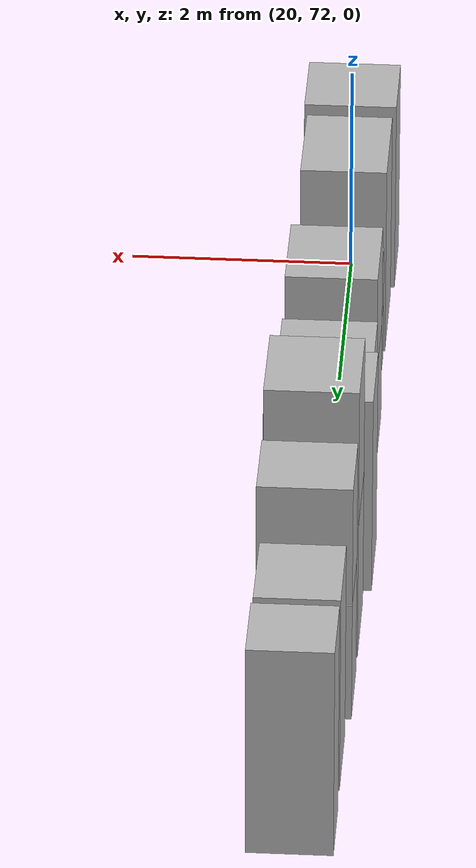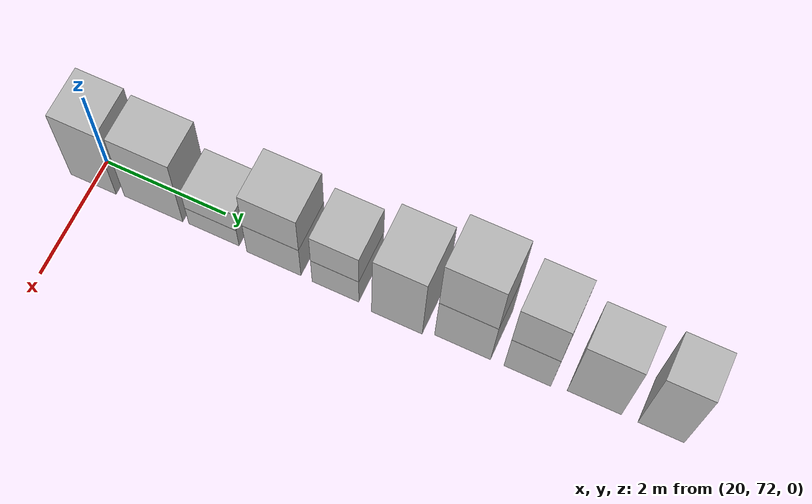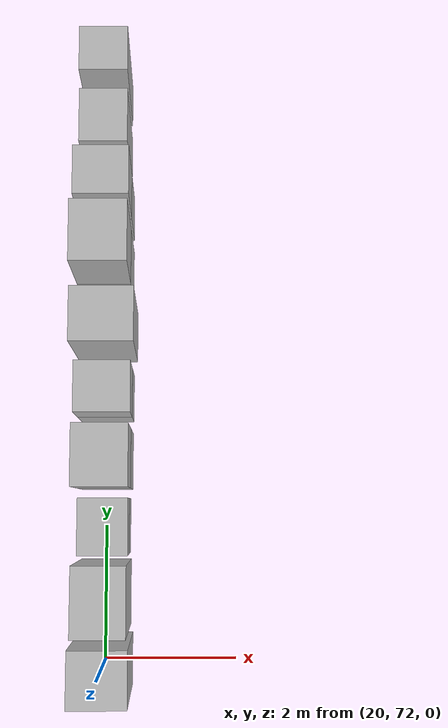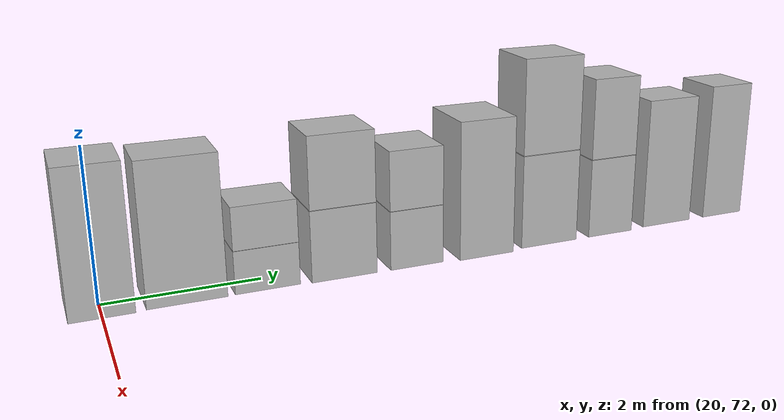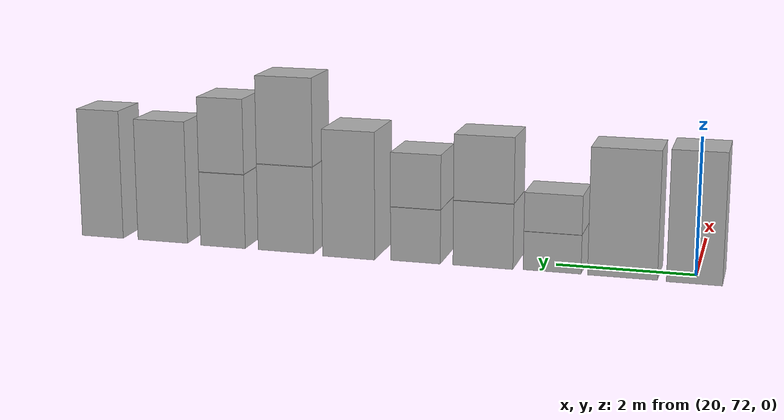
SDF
<sdf version="1.5">
 <world name="default">
  <model name="ground_plane">
   <static>true</static>
   <link name="link">
    <collision name="collision">
     <geometry><plane><normal>0 0 1</normal><size>250 250</size></plane></geometry>
     <surface><friction><ode><mu>1</mu><mu2>1</mu2></ode></friction></surface>
    </collision>
    <visual name="grass">
     <cast_shadows>false</cast_shadows>
     <geometry><mesh><uri>file://grass_plane/meshes/grass_plane.dae</uri></mesh></geometry>
    </visual>
   </link>
  </model>
  <model name="Cardboard_box_622">
   <link name="link_0">
    <pose>20 72 0 0 0 0</pose>
    <inertial>
     <mass>1</mass>
     <inertia>
      <ixx>0.166667</ixx>
      <ixy>0</ixy>
      <ixz>0</ixz>
      <iyy>0.166667</iyy>
      <iyz>0</iyz>
      <izz>0.166667</izz>
     </inertia>
    </inertial>
    <collision name="collision">
     <geometry>
      <mesh>
       <uri>model://Cardboard_box/meshes/cardboard_box.dae</uri>
       <scale>2.07950483462 1.93775980227 4.75104418788</scale>
      </mesh>
     </geometry>
    </collision>
    <visual name="visual">
     <geometry>
      <mesh>
       <uri>model://Cardboard_box/meshes/cardboard_box.dae</uri>
       <scale>2.07950483462 1.93775980227 4.75104418788</scale>
      </mesh>
     </geometry>
    </visual>
   </link>
   <static>1</static>
  </model>
  <model name="Cardboard_box_623">
   <link name="link_0">
    <pose>20 73 0 0 0 0</pose>
    <inertial>
     <mass>1</mass>
     <inertia>
      <ixx>0.166667</ixx>
      <ixy>0</ixy>
      <ixz>0</ixz>
      <iyy>0.166667</iyy>
      <iyz>0</iyz>
      <izz>0.166667</izz>
     </inertia>
    </inertial>
    <collision name="collision">
     <geometry>
      <mesh>
       <uri>model://Cardboard_box/meshes/cardboard_box.dae</uri>
       <scale>1.93011278462 2.46913856433 4.66632540886</scale>
      </mesh>
     </geometry>
    </collision>
    <visual name="visual">
     <geometry>
      <mesh>
       <uri>model://Cardboard_box/meshes/cardboard_box.dae</uri>
       <scale>1.93011278462 2.46913856433 4.66632540886</scale>
      </mesh>
     </geometry>
    </visual>
   </link>
   <static>1</static>
  </model>
  <model name="Cardboard_box_624">
   <link name="link_0">
    <pose>20 74 0 0 0 0</pose>
    <inertial>
     <mass>1</mass>
     <inertia>
      <ixx>0.166667</ixx>
      <ixy>0</ixy>
      <ixz>0</ixz>
      <iyy>0.166667</iyy>
      <iyz>0</iyz>
      <izz>0.166667</izz>
     </inertia>
    </inertial>
    <collision name="collision">
     <geometry>
      <mesh>
       <uri>model://Cardboard_box/meshes/cardboard_box.dae</uri>
       <scale>1.86585459108 2.09443496727 1.43057838274</scale>
      </mesh>
     </geometry>
    </collision>
    <visual name="visual">
     <geometry>
      <mesh>
       <uri>model://Cardboard_box/meshes/cardboard_box.dae</uri>
       <scale>1.86585459108 2.09443496727 1.43057838274</scale>
      </mesh>
     </geometry>
    </visual>
   </link>
   <static>1</static>
  </model>
  <model name="Cardboard_box_top_624">
   <link name="link_0">
    <pose>20 74 0.572231353094 0 0 0</pose>
    <inertial>
     <mass>1</mass>
     <inertia>
      <ixx>0.166667</ixx>
      <ixy>0</ixy>
      <ixz>0</ixz>
      <iyy>0.166667</iyy>
      <iyz>0</iyz>
      <izz>0.166667</izz>
     </inertia>
    </inertial>
    <collision name="collision">
     <geometry>
      <mesh>
       <uri>model://Cardboard_box/meshes/cardboard_box.dae</uri>
       <scale>1.86585459108 2.09443496727 1.43057838274</scale>
      </mesh>
     </geometry>
    </collision>
    <visual name="visual">
     <geometry>
      <mesh>
       <uri>model://Cardboard_box/meshes/cardboard_box.dae</uri>
       <scale>1.86585459108 2.09443496727 1.43057838274</scale>
      </mesh>
     </geometry>
    </visual>
   </link>
   <static>1</static>
  </model>
  <model name="Cardboard_box_625">
   <link name="link_0">
    <pose>20 75 0 0 0 0</pose>
    <inertial>
     <mass>1</mass>
     <inertia>
      <ixx>0.166667</ixx>
      <ixy>0</ixy>
      <ixz>0</ixz>
      <iyy>0.166667</iyy>
      <iyz>0</iyz>
      <izz>0.166667</izz>
     </inertia>
    </inertial>
    <collision name="collision">
     <geometry>
      <mesh>
       <uri>model://Cardboard_box/meshes/cardboard_box.dae</uri>
       <scale>2.02912807314 2.22000169423 2.42081570107</scale>
      </mesh>
     </geometry>
    </collision>
    <visual name="visual">
     <geometry>
      <mesh>
       <uri>model://Cardboard_box/meshes/cardboard_box.dae</uri>
       <scale>2.02912807314 2.22000169423 2.42081570107</scale>
      </mesh>
     </geometry>
    </visual>
   </link>
   <static>1</static>
  </model>
  <model name="Cardboard_box_top_625">
   <link name="link_0">
    <pose>20 75 0.968326280427 0 0 0</pose>
    <inertial>
     <mass>1</mass>
     <inertia>
      <ixx>0.166667</ixx>
      <ixy>0</ixy>
      <ixz>0</ixz>
      <iyy>0.166667</iyy>
      <iyz>0</iyz>
      <izz>0.166667</izz>
     </inertia>
    </inertial>
    <collision name="collision">
     <geometry>
      <mesh>
       <uri>model://Cardboard_box/meshes/cardboard_box.dae</uri>
       <scale>2.02912807314 2.22000169423 2.42081570107</scale>
      </mesh>
     </geometry>
    </collision>
    <visual name="visual">
     <geometry>
      <mesh>
       <uri>model://Cardboard_box/meshes/cardboard_box.dae</uri>
       <scale>2.02912807314 2.22000169423 2.42081570107</scale>
      </mesh>
     </geometry>
    </visual>
   </link>
   <static>1</static>
  </model>
  <model name="Cardboard_box_626">
   <link name="link_0">
    <pose>20 76 0 0 0 0</pose>
    <inertial>
     <mass>1</mass>
     <inertia>
      <ixx>0.166667</ixx>
      <ixy>0</ixy>
      <ixz>0</ixz>
      <iyy>0.166667</iyy>
      <iyz>0</iyz>
      <izz>0.166667</izz>
     </inertia>
    </inertial>
    <collision name="collision">
     <geometry>
      <mesh>
       <uri>model://Cardboard_box/meshes/cardboard_box.dae</uri>
       <scale>2.08202551287 1.88536928377 2.02735580001</scale>
      </mesh>
     </geometry>
    </collision>
    <visual name="visual">
     <geometry>
      <mesh>
       <uri>model://Cardboard_box/meshes/cardboard_box.dae</uri>
       <scale>2.08202551287 1.88536928377 2.02735580001</scale>
      </mesh>
     </geometry>
    </visual>
   </link>
   <static>1</static>
  </model>
  <model name="Cardboard_box_top_626">
   <link name="link_0">
    <pose>20 76 0.810942320004 0 0 0</pose>
    <inertial>
     <mass>1</mass>
     <inertia>
      <ixx>0.166667</ixx>
      <ixy>0</ixy>
      <ixz>0</ixz>
      <iyy>0.166667</iyy>
      <iyz>0</iyz>
      <izz>0.166667</izz>
     </inertia>
    </inertial>
    <collision name="collision">
     <geometry>
      <mesh>
       <uri>model://Cardboard_box/meshes/cardboard_box.dae</uri>
       <scale>2.08202551287 1.88536928377 2.02735580001</scale>
      </mesh>
     </geometry>
    </collision>
    <visual name="visual">
     <geometry>
      <mesh>
       <uri>model://Cardboard_box/meshes/cardboard_box.dae</uri>
       <scale>2.08202551287 1.88536928377 2.02735580001</scale>
      </mesh>
     </geometry>
    </visual>
   </link>
   <static>1</static>
  </model>
  <model name="Cardboard_box_627">
   <link name="link_0">
    <pose>20 77 0 0 0 0</pose>
    <inertial>
     <mass>1</mass>
     <inertia>
      <ixx>0.166667</ixx>
      <ixy>0</ixy>
      <ixz>0</ixz>
      <iyy>0.166667</iyy>
      <iyz>0</iyz>
      <izz>0.166667</izz>
     </inertia>
    </inertial>
    <collision name="collision">
     <geometry>
      <mesh>
       <uri>model://Cardboard_box/meshes/cardboard_box.dae</uri>
       <scale>2.34771712934 2.01731359231 4.80738877936</scale>
      </mesh>
     </geometry>
    </collision>
    <visual name="visual">
     <geometry>
      <mesh>
       <uri>model://Cardboard_box/meshes/cardboard_box.dae</uri>
       <scale>2.34771712934 2.01731359231 4.80738877936</scale>
      </mesh>
     </geometry>
    </visual>
   </link>
   <static>1</static>
  </model>
  <model name="Cardboard_box_628">
   <link name="link_0">
    <pose>20 78 0 0 0 0</pose>
    <inertial>
     <mass>1</mass>
     <inertia>
      <ixx>0.166667</ixx>
      <ixy>0</ixy>
      <ixz>0</ixz>
      <iyy>0.166667</iyy>
      <iyz>0</iyz>
      <izz>0.166667</izz>
     </inertia>
    </inertial>
    <collision name="collision">
     <geometry>
      <mesh>
       <uri>model://Cardboard_box/meshes/cardboard_box.dae</uri>
       <scale>2.0173668205 2.19356576364 3.31237962228</scale>
      </mesh>
     </geometry>
    </collision>
    <visual name="visual">
     <geometry>
      <mesh>
       <uri>model://Cardboard_box/meshes/cardboard_box.dae</uri>
       <scale>2.0173668205 2.19356576364 3.31237962228</scale>
      </mesh>
     </geometry>
    </visual>
   </link>
   <static>1</static>
  </model>
  <model name="Cardboard_box_top_628">
   <link name="link_0">
    <pose>20 78 1.32495184891 0 0 0</pose>
    <inertial>
     <mass>1</mass>
     <inertia>
      <ixx>0.166667</ixx>
      <ixy>0</ixy>
      <ixz>0</ixz>
      <iyy>0.166667</iyy>
      <iyz>0</iyz>
      <izz>0.166667</izz>
     </inertia>
    </inertial>
    <collision name="collision">
     <geometry>
      <mesh>
       <uri>model://Cardboard_box/meshes/cardboard_box.dae</uri>
       <scale>2.0173668205 2.19356576364 3.31237962228</scale>
      </mesh>
     </geometry>
    </collision>
    <visual name="visual">
     <geometry>
      <mesh>
       <uri>model://Cardboard_box/meshes/cardboard_box.dae</uri>
       <scale>2.0173668205 2.19356576364 3.31237962228</scale>
      </mesh>
     </geometry>
    </visual>
   </link>
   <static>1</static>
  </model>
  <model name="Cardboard_box_629">
   <link name="link_0">
    <pose>20 79 0 0 0 0</pose>
    <inertial>
     <mass>1</mass>
     <inertia>
      <ixx>0.166667</ixx>
      <ixy>0</ixy>
      <ixz>0</ixz>
      <iyy>0.166667</iyy>
      <iyz>0</iyz>
      <izz>0.166667</izz>
     </inertia>
    </inertial>
    <collision name="collision">
     <geometry>
      <mesh>
       <uri>model://Cardboard_box/meshes/cardboard_box.dae</uri>
       <scale>2.01543535477 1.80817123421 2.8585116619</scale>
      </mesh>
     </geometry>
    </collision>
    <visual name="visual">
     <geometry>
      <mesh>
       <uri>model://Cardboard_box/meshes/cardboard_box.dae</uri>
       <scale>2.01543535477 1.80817123421 2.8585116619</scale>
      </mesh>
     </geometry>
    </visual>
   </link>
   <static>1</static>
  </model>
  <model name="Cardboard_box_top_629">
   <link name="link_0">
    <pose>20 79 1.14340466476 0 0 0</pose>
    <inertial>
     <mass>1</mass>
     <inertia>
      <ixx>0.166667</ixx>
      <ixy>0</ixy>
      <ixz>0</ixz>
      <iyy>0.166667</iyy>
      <iyz>0</iyz>
      <izz>0.166667</izz>
     </inertia>
    </inertial>
    <collision name="collision">
     <geometry>
      <mesh>
       <uri>model://Cardboard_box/meshes/cardboard_box.dae</uri>
       <scale>2.01543535477 1.80817123421 2.8585116619</scale>
      </mesh>
     </geometry>
    </collision>
    <visual name="visual">
     <geometry>
      <mesh>
       <uri>model://Cardboard_box/meshes/cardboard_box.dae</uri>
       <scale>2.01543535477 1.80817123421 2.8585116619</scale>
      </mesh>
     </geometry>
    </visual>
   </link>
   <static>1</static>
  </model>
  <model name="Cardboard_box_630">
   <link name="link_0">
    <pose>20 80 0 0 0 0</pose>
    <inertial>
     <mass>1</mass>
     <inertia>
      <ixx>0.166667</ixx>
      <ixy>0</ixy>
      <ixz>0</ixz>
      <iyy>0.166667</iyy>
      <iyz>0</iyz>
      <izz>0.166667</izz>
     </inertia>
    </inertial>
    <collision name="collision">
     <geometry>
      <mesh>
       <uri>model://Cardboard_box/meshes/cardboard_box.dae</uri>
       <scale>1.80622977218 2.06192983117 4.73639213282</scale>
      </mesh>
     </geometry>
    </collision>
    <visual name="visual">
     <geometry>
      <mesh>
       <uri>model://Cardboard_box/meshes/cardboard_box.dae</uri>
       <scale>1.80622977218 2.06192983117 4.73639213282</scale>
      </mesh>
     </geometry>
    </visual>
   </link>
   <static>1</static>
  </model>
  <model name="Cardboard_box_631">
   <link name="link_0">
    <pose>20 81 0 0 0 0</pose>
    <inertial>
     <mass>1</mass>
     <inertia>
      <ixx>0.166667</ixx>
      <ixy>0</ixy>
      <ixz>0</ixz>
      <iyy>0.166667</iyy>
      <iyz>0</iyz>
      <izz>0.166667</izz>
     </inertia>
    </inertial>
    <collision name="collision">
     <geometry>
      <mesh>
       <uri>model://Cardboard_box/meshes/cardboard_box.dae</uri>
       <scale>1.81795179271 1.73459722616 5.01415309593</scale>
      </mesh>
     </geometry>
    </collision>
    <visual name="visual">
     <geometry>
      <mesh>
       <uri>model://Cardboard_box/meshes/cardboard_box.dae</uri>
       <scale>1.81795179271 1.73459722616 5.01415309593</scale>
      </mesh>
     </geometry>
    </visual>
   </link>
   <static>1</static>
  </model>
 </world>
</sdf>
